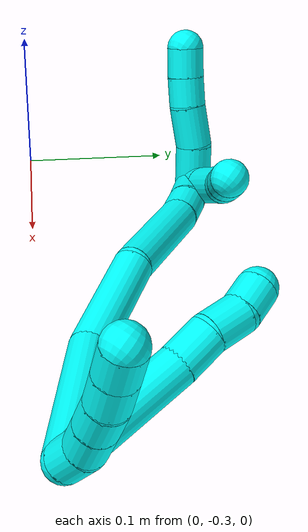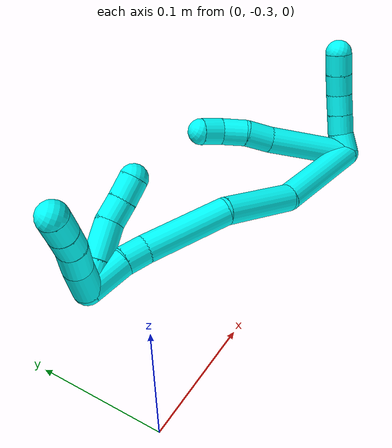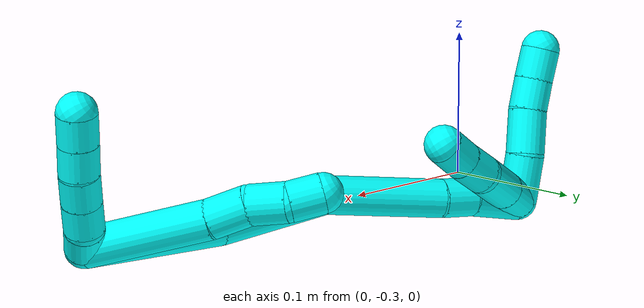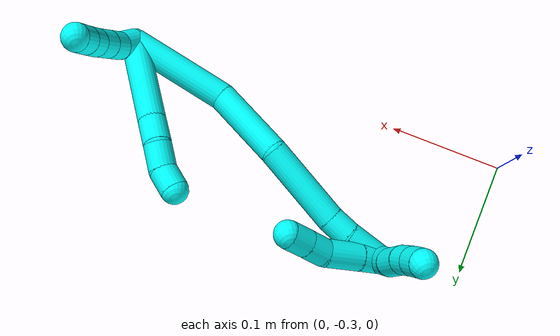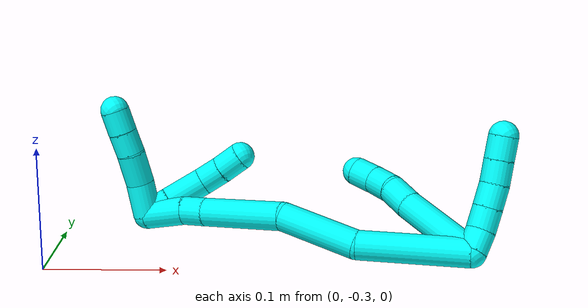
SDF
<sdf version="1.7">
 <world name="default">
  <model name="3">
   <static>0</static>
   <link name="3">
    <collision name="collision-cylinder-e_1_2_8">
     <pose>-0.008776 -0.009324 -0.037979 2.90086 -0.220763 -1.48355</pose>
     <geometry><cylinder><radius>0.0125</radius><length>0.08016</length></cylinder></geometry>
     <surface>
      <friction><ode><mu>1.16</mu><mu2>1.16</mu2><slip1>0</slip1><slip2>0</slip2></ode></friction>
      <contact><ode><kp>1e+06</kp><kd>1</kd><max_vel>0</max_vel><min_depth>0.001</min_depth></ode></contact>
     </surface>
    </collision>
    <visual name="visual-cylinder-e_1_2_8">
     <pose>-0.008776 -0.009324 -0.037979 2.90086 -0.220763 -1.48355</pose>
     <geometry><cylinder><radius>0.0125</radius><length>0.08016</length></cylinder></geometry>
     <material><ambient>0.003922 1 0.996078 1</ambient></material>
    </visual>
    <collision name="collision-cylinder-e_2_8_9">
     <pose>-0.019254 -0.020617 -0.088246 2.98267 -0.135834 -1.41387</pose>
     <geometry><cylinder><radius>0.0125</radius><length>0.025119</length></cylinder></geometry>
     <surface>
      <friction><ode><mu>1.16</mu><mu2>1.16</mu2><slip1>0</slip1><slip2>0</slip2></ode></friction>
      <contact><ode><kp>1e+06</kp><kd>1</kd><max_vel>0</max_vel><min_depth>0.001</min_depth></ode></contact>
     </surface>
    </collision>
    <visual name="visual-cylinder-e_2_8_9">
     <pose>-0.019254 -0.020617 -0.088246 2.98267 -0.135834 -1.41387</pose>
     <geometry><cylinder><radius>0.0125</radius><length>0.025119</length></cylinder></geometry>
     <material><ambient>0.003922 1 0.996078 1</ambient></material>
    </visual>
    <collision name="collision-cylinder-e_3_9_10">
     <pose>-0.02482 -0.026413 -0.111176 2.79637 -0.329368 -1.52289</pose>
     <geometry><cylinder><radius>0.0125</radius><length>0.023905</length></cylinder></geometry>
     <surface>
      <friction><ode><mu>1.16</mu><mu2>1.16</mu2><slip1>0</slip1><slip2>0</slip2></ode></friction>
      <contact><ode><kp>1e+06</kp><kd>1</kd><max_vel>0</max_vel><min_depth>0.001</min_depth></ode></contact>
     </surface>
    </collision>
    <visual name="visual-cylinder-e_3_9_10">
     <pose>-0.02482 -0.026413 -0.111176 2.79637 -0.329368 -1.52289</pose>
     <geometry><cylinder><radius>0.0125</radius><length>0.023905</length></cylinder></geometry>
     <material><ambient>0.003922 1 0.996078 1</ambient></material>
    </visual>
    <collision name="collision-cylinder-e_4_10_6">
     <pose>-0.032657 -0.030224 -0.13144 -3.13983 -0.391367 3.13267</pose>
     <geometry><cylinder><radius>0.0125</radius><length>0.020816</length></cylinder></geometry>
     <surface>
      <friction><ode><mu>1.16</mu><mu2>1.16</mu2><slip1>0</slip1><slip2>0</slip2></ode></friction>
      <contact><ode><kp>1e+06</kp><kd>1</kd><max_vel>0</max_vel><min_depth>0.001</min_depth></ode></contact>
     </surface>
    </collision>
    <visual name="visual-cylinder-e_4_10_6">
     <pose>-0.032657 -0.030224 -0.13144 -3.13983 -0.391367 3.13267</pose>
     <geometry><cylinder><radius>0.0125</radius><length>0.020816</length></cylinder></geometry>
     <material><ambient>0.003922 1 0.996078 1</ambient></material>
    </visual>
    <collision name="collision-cylinder-e_1_2_11">
     <pose>0.00811 -0.002723 -0.005178 2.65746 0.945911 2.24244</pose>
     <geometry><cylinder><radius>0.0125</radius><length>0.02</length></cylinder></geometry>
     <surface>
      <friction><ode><mu>1.16</mu><mu2>1.16</mu2><slip1>0</slip1><slip2>0</slip2></ode></friction>
      <contact><ode><kp>1e+06</kp><kd>1</kd><max_vel>0</max_vel><min_depth>0.001</min_depth></ode></contact>
     </surface>
    </collision>
    <visual name="visual-cylinder-e_1_2_11">
     <pose>0.00811 -0.002723 -0.005178 2.65746 0.945911 2.24244</pose>
     <geometry><cylinder><radius>0.0125</radius><length>0.02</length></cylinder></geometry>
     <material><ambient>0.003922 1 0.996078 1</ambient></material>
    </visual>
    <collision name="collision-cylinder-e_2_11_12">
     <pose>0.02479 -0.004983 -0.015489 -3.05162 1.02925 -2.98271</pose>
     <geometry><cylinder><radius>0.0125</radius><length>0.02</length></cylinder></geometry>
     <surface>
      <friction><ode><mu>1.16</mu><mu2>1.16</mu2><slip1>0</slip1><slip2>0</slip2></ode></friction>
      <contact><ode><kp>1e+06</kp><kd>1</kd><max_vel>0</max_vel><min_depth>0.001</min_depth></ode></contact>
     </surface>
    </collision>
    <visual name="visual-cylinder-e_2_11_12">
     <pose>0.02479 -0.004983 -0.015489 -3.05162 1.02925 -2.98271</pose>
     <geometry><cylinder><radius>0.0125</radius><length>0.02</length></cylinder></geometry>
     <material><ambient>0.003922 1 0.996078 1</ambient></material>
    </visual>
    <collision name="collision-cylinder-e_3_12_13">
     <pose>0.041874 -0.00396 -0.025836 -3.03465 1.01891 -2.95056</pose>
     <geometry><cylinder><radius>0.0125</radius><length>0.02</length></cylinder></geometry>
     <surface>
      <friction><ode><mu>1.16</mu><mu2>1.16</mu2><slip1>0</slip1><slip2>0</slip2></ode></friction>
      <contact><ode><kp>1e+06</kp><kd>1</kd><max_vel>0</max_vel><min_depth>0.001</min_depth></ode></contact>
     </surface>
    </collision>
    <visual name="visual-cylinder-e_3_12_13">
     <pose>0.041874 -0.00396 -0.025836 -3.03465 1.01891 -2.95056</pose>
     <geometry><cylinder><radius>0.0125</radius><length>0.02</length></cylinder></geometry>
     <material><ambient>0.003922 1 0.996078 1</ambient></material>
    </visual>
    <collision name="collision-cylinder-e_4_13_14">
     <pose>0.058463 -0.00169 -0.036696 -2.84749 0.939689 -2.57393</pose>
     <geometry><cylinder><radius>0.0125</radius><length>0.02</length></cylinder></geometry>
     <surface>
      <friction><ode><mu>1.16</mu><mu2>1.16</mu2><slip1>0</slip1><slip2>0</slip2></ode></friction>
      <contact><ode><kp>1e+06</kp><kd>1</kd><max_vel>0</max_vel><min_depth>0.001</min_depth></ode></contact>
     </surface>
    </collision>
    <visual name="visual-cylinder-e_4_13_14">
     <pose>0.058463 -0.00169 -0.036696 -2.84749 0.939689 -2.57393</pose>
     <geometry><cylinder><radius>0.0125</radius><length>0.02</length></cylinder></geometry>
     <material><ambient>0.003922 1 0.996078 1</ambient></material>
    </visual>
    <collision name="collision-cylinder-e_5_14_5">
     <pose>0.074674 0.001815 -0.047873 -2.82788 0.950442 -2.54519</pose>
     <geometry><cylinder><radius>0.0125</radius><length>0.02</length></cylinder></geometry>
     <surface>
      <friction><ode><mu>1.16</mu><mu2>1.16</mu2><slip1>0</slip1><slip2>0</slip2></ode></friction>
      <contact><ode><kp>1e+06</kp><kd>1</kd><max_vel>0</max_vel><min_depth>0.001</min_depth></ode></contact>
     </surface>
    </collision>
    <visual name="visual-cylinder-e_5_14_5">
     <pose>0.074674 0.001815 -0.047873 -2.82788 0.950442 -2.54519</pose>
     <geometry><cylinder><radius>0.0125</radius><length>0.02</length></cylinder></geometry>
     <material><ambient>0.003922 1 0.996078 1</ambient></material>
    </visual>
    <collision name="collision-cylinder-e_1_2_15">
     <pose>-0.032061 0.014745 -0.031071 -2.69849 -0.75033 2.1025</pose>
     <geometry><cylinder><radius>0.0125</radius><length>0.094037</length></cylinder></geometry>
     <surface>
      <friction><ode><mu>1.16</mu><mu2>1.16</mu2><slip1>0</slip1><slip2>0</slip2></ode></friction>
      <contact><ode><kp>1e+06</kp><kd>1</kd><max_vel>0</max_vel><min_depth>0.001</min_depth></ode></contact>
     </surface>
    </collision>
    <visual name="visual-cylinder-e_1_2_15">
     <pose>-0.032061 0.014745 -0.031071 -2.69849 -0.75033 2.1025</pose>
     <geometry><cylinder><radius>0.0125</radius><length>0.094037</length></cylinder></geometry>
     <material><ambient>0.003922 1 0.996078 1</ambient></material>
    </visual>
    <collision name="collision-cylinder-e_2_15_16">
     <pose>-0.080345 0.034957 -0.092782 -2.96507 -0.480484 2.44829</pose>
     <geometry><cylinder><radius>0.0125</radius><length>0.070197</length></cylinder></geometry>
     <surface>
      <friction><ode><mu>1.16</mu><mu2>1.16</mu2><slip1>0</slip1><slip2>0</slip2></ode></friction>
      <contact><ode><kp>1e+06</kp><kd>1</kd><max_vel>0</max_vel><min_depth>0.001</min_depth></ode></contact>
     </surface>
    </collision>
    <visual name="visual-cylinder-e_2_15_16">
     <pose>-0.080345 0.034957 -0.092782 -2.96507 -0.480484 2.44829</pose>
     <geometry><cylinder><radius>0.0125</radius><length>0.070197</length></cylinder></geometry>
     <material><ambient>0.003922 1 0.996078 1</ambient></material>
    </visual>
    <collision name="collision-cylinder-e_3_16_17">
     <pose>-0.123386 0.04049 -0.151727 -3.13921 -0.75846 3.13562</pose>
     <geometry><cylinder><radius>0.0125</radius><length>0.077984</length></cylinder></geometry>
     <surface>
      <friction><ode><mu>1.16</mu><mu2>1.16</mu2><slip1>0</slip1><slip2>0</slip2></ode></friction>
      <contact><ode><kp>1e+06</kp><kd>1</kd><max_vel>0</max_vel><min_depth>0.001</min_depth></ode></contact>
     </surface>
    </collision>
    <visual name="visual-cylinder-e_3_16_17">
     <pose>-0.123386 0.04049 -0.151727 -3.13921 -0.75846 3.13562</pose>
     <geometry><cylinder><radius>0.0125</radius><length>0.077984</length></cylinder></geometry>
     <material><ambient>0.003922 1 0.996078 1</ambient></material>
    </visual>
    <collision name="collision-cylinder-e_4_17_18">
     <pose>-0.157614 0.042038 -0.187712 -2.95116 -0.758273 2.67104</pose>
     <geometry><cylinder><radius>0.0125</radius><length>0.021548</length></cylinder></geometry>
     <surface>
      <friction><ode><mu>1.16</mu><mu2>1.16</mu2><slip1>0</slip1><slip2>0</slip2></ode></friction>
      <contact><ode><kp>1e+06</kp><kd>1</kd><max_vel>0</max_vel><min_depth>0.001</min_depth></ode></contact>
     </surface>
    </collision>
    <visual name="visual-cylinder-e_4_17_18">
     <pose>-0.157614 0.042038 -0.187712 -2.95116 -0.758273 2.67104</pose>
     <geometry><cylinder><radius>0.0125</radius><length>0.021548</length></cylinder></geometry>
     <material><ambient>0.003922 1 0.996078 1</ambient></material>
    </visual>
    <collision name="collision-cylinder-e_5_18_1">
     <pose>-0.179502 0.046481 -0.205872 -2.86602 -0.925931 2.59965</pose>
     <geometry><cylinder><radius>0.0125</radius><length>0.036234</length></cylinder></geometry>
     <surface>
      <friction><ode><mu>1.16</mu><mu2>1.16</mu2><slip1>0</slip1><slip2>0</slip2></ode></friction>
      <contact><ode><kp>1e+06</kp><kd>1</kd><max_vel>0</max_vel><min_depth>0.001</min_depth></ode></contact>
     </surface>
    </collision>
    <visual name="visual-cylinder-e_5_18_1">
     <pose>-0.179502 0.046481 -0.205872 -2.86602 -0.925931 2.59965</pose>
     <geometry><cylinder><radius>0.0125</radius><length>0.036234</length></cylinder></geometry>
     <material><ambient>0.003922 1 0.996078 1</ambient></material>
    </visual>
    <collision name="collision-cylinder-e_1_1_19">
     <pose>-0.18319 0.045227 -0.215749 1.42899 1.19476 1.06618</pose>
     <geometry><cylinder><radius>0.0125</radius><length>0.023202</length></cylinder></geometry>
     <surface>
      <friction><ode><mu>1.16</mu><mu2>1.16</mu2><slip1>0</slip1><slip2>0</slip2></ode></friction>
      <contact><ode><kp>1e+06</kp><kd>1</kd><max_vel>0</max_vel><min_depth>0.001</min_depth></ode></contact>
     </surface>
    </collision>
    <visual name="visual-cylinder-e_1_1_19">
     <pose>-0.18319 0.045227 -0.215749 1.42899 1.19476 1.06618</pose>
     <geometry><cylinder><radius>0.0125</radius><length>0.023202</length></cylinder></geometry>
     <material><ambient>0.003922 1 0.996078 1</ambient></material>
    </visual>
    <collision name="collision-cylinder-e_2_19_20">
     <pose>-0.156389 0.034363 -0.214035 1.40508 1.17243 1.02438</pose>
     <geometry><cylinder><radius>0.0125</radius><length>0.034742</length></cylinder></geometry>
     <surface>
      <friction><ode><mu>1.16</mu><mu2>1.16</mu2><slip1>0</slip1><slip2>0</slip2></ode></friction>
      <contact><ode><kp>1e+06</kp><kd>1</kd><max_vel>0</max_vel><min_depth>0.001</min_depth></ode></contact>
     </surface>
    </collision>
    <visual name="visual-cylinder-e_2_19_20">
     <pose>-0.156389 0.034363 -0.214035 1.40508 1.17243 1.02438</pose>
     <geometry><cylinder><radius>0.0125</radius><length>0.034742</length></cylinder></geometry>
     <material><ambient>0.003922 1 0.996078 1</ambient></material>
    </visual>
    <collision name="collision-cylinder-e_3_20_21">
     <pose>-0.130185 0.026595 -0.210922 0.510716 1.34936 0.411723</pose>
     <geometry><cylinder><radius>0.0125</radius><length>0.020897</length></cylinder></geometry>
     <surface>
      <friction><ode><mu>1.16</mu><mu2>1.16</mu2><slip1>0</slip1><slip2>0</slip2></ode></friction>
      <contact><ode><kp>1e+06</kp><kd>1</kd><max_vel>0</max_vel><min_depth>0.001</min_depth></ode></contact>
     </surface>
    </collision>
    <visual name="visual-cylinder-e_3_20_21">
     <pose>-0.130185 0.026595 -0.210922 0.510716 1.34936 0.411723</pose>
     <geometry><cylinder><radius>0.0125</radius><length>0.020897</length></cylinder></geometry>
     <material><ambient>0.003922 1 0.996078 1</ambient></material>
    </visual>
    <collision name="collision-cylinder-e_4_21_4">
     <pose>-0.109559 0.024503 -0.207456 0.585731 1.40398 0.499373</pose>
     <geometry><cylinder><radius>0.0125</radius><length>0.021159</length></cylinder></geometry>
     <surface>
      <friction><ode><mu>1.16</mu><mu2>1.16</mu2><slip1>0</slip1><slip2>0</slip2></ode></friction>
      <contact><ode><kp>1e+06</kp><kd>1</kd><max_vel>0</max_vel><min_depth>0.001</min_depth></ode></contact>
     </surface>
    </collision>
    <visual name="visual-cylinder-e_4_21_4">
     <pose>-0.109559 0.024503 -0.207456 0.585731 1.40398 0.499373</pose>
     <geometry><cylinder><radius>0.0125</radius><length>0.021159</length></cylinder></geometry>
     <material><ambient>0.003922 1 0.996078 1</ambient></material>
    </visual>
    <collision name="collision-cylinder-e_1_1_22">
     <pose>-0.185232 0.056877 -0.226499 -2.50943 0.607703 -1.5287</pose>
     <geometry><cylinder><radius>0.0125</radius><length>0.030644</length></cylinder></geometry>
     <surface>
      <friction><ode><mu>1.16</mu><mu2>1.16</mu2><slip1>0</slip1><slip2>0</slip2></ode></friction>
      <contact><ode><kp>1e+06</kp><kd>1</kd><max_vel>0</max_vel><min_depth>0.001</min_depth></ode></contact>
     </surface>
    </collision>
    <visual name="visual-cylinder-e_1_1_22">
     <pose>-0.185232 0.056877 -0.226499 -2.50943 0.607703 -1.5287</pose>
     <geometry><cylinder><radius>0.0125</radius><length>0.030644</length></cylinder></geometry>
     <material><ambient>0.003922 1 0.996078 1</ambient></material>
    </visual>
    <collision name="collision-cylinder-e_2_22_23">
     <pose>-0.168752 0.073424 -0.244813 -2.30139 0.563489 -1.14989</pose>
     <geometry><cylinder><radius>0.0125</radius><length>0.028948</length></cylinder></geometry>
     <surface>
      <friction><ode><mu>1.16</mu><mu2>1.16</mu2><slip1>0</slip1><slip2>0</slip2></ode></friction>
      <contact><ode><kp>1e+06</kp><kd>1</kd><max_vel>0</max_vel><min_depth>0.001</min_depth></ode></contact>
     </surface>
    </collision>
    <visual name="visual-cylinder-e_2_22_23">
     <pose>-0.168752 0.073424 -0.244813 -2.30139 0.563489 -1.14989</pose>
     <geometry><cylinder><radius>0.0125</radius><length>0.028948</length></cylinder></geometry>
     <material><ambient>0.003922 1 0.996078 1</ambient></material>
    </visual>
    <collision name="collision-cylinder-e_3_23_24">
     <pose>-0.15633 0.088369 -0.259664 -2.4243 0.486423 -1.16941</pose>
     <geometry><cylinder><radius>0.0125</radius><length>0.020072</length></cylinder></geometry>
     <surface>
      <friction><ode><mu>1.16</mu><mu2>1.16</mu2><slip1>0</slip1><slip2>0</slip2></ode></friction>
      <contact><ode><kp>1e+06</kp><kd>1</kd><max_vel>0</max_vel><min_depth>0.001</min_depth></ode></contact>
     </surface>
    </collision>
    <visual name="visual-cylinder-e_3_23_24">
     <pose>-0.15633 0.088369 -0.259664 -2.4243 0.486423 -1.16941</pose>
     <geometry><cylinder><radius>0.0125</radius><length>0.020072</length></cylinder></geometry>
     <material><ambient>0.003922 1 0.996078 1</ambient></material>
    </visual>
    <collision name="collision-cylinder-e_4_24_3">
     <pose>-0.146779 0.099665 -0.273415 -2.48331 0.498248 -1.28037</pose>
     <geometry><cylinder><radius>0.0125</radius><length>0.020336</length></cylinder></geometry>
     <surface>
      <friction><ode><mu>1.16</mu><mu2>1.16</mu2><slip1>0</slip1><slip2>0</slip2></ode></friction>
      <contact><ode><kp>1e+06</kp><kd>1</kd><max_vel>0</max_vel><min_depth>0.001</min_depth></ode></contact>
     </surface>
    </collision>
    <visual name="visual-cylinder-e_4_24_3">
     <pose>-0.146779 0.099665 -0.273415 -2.48331 0.498248 -1.28037</pose>
     <geometry><cylinder><radius>0.0125</radius><length>0.020336</length></cylinder></geometry>
     <material><ambient>0.003922 1 0.996078 1</ambient></material>
    </visual>
    <collision name="collision-sphere-3">
     <pose>-0.14192 0.105129 -0.28048 0 -0 0</pose>
     <geometry><sphere><radius>0.0125</radius></sphere></geometry>
     <surface>
      <friction><ode><mu>1.16</mu><mu2>1.16</mu2><slip1>0</slip1><slip2>0</slip2></ode></friction>
      <contact><ode><kp>1e+06</kp><kd>1</kd><max_vel>0</max_vel><min_depth>0.001</min_depth></ode></contact>
     </surface>
    </collision>
    <visual name="visual-sphere-3">
     <pose>-0.14192 0.105129 -0.28048 0 -0 0</pose>
     <geometry><sphere><radius>0.0125</radius></sphere></geometry>
     <material><ambient>0.003922 1 0.996078 1</ambient></material>
    </visual>
    <collision name="collision-sphere-24">
     <pose>-0.151638 0.094201 -0.26635 0 -0 0</pose>
     <geometry><sphere><radius>0.0125</radius></sphere></geometry>
     <surface>
      <friction><ode><mu>1.16</mu><mu2>1.16</mu2><slip1>0</slip1><slip2>0</slip2></ode></friction>
      <contact><ode><kp>1e+06</kp><kd>1</kd><max_vel>0</max_vel><min_depth>0.001</min_depth></ode></contact>
     </surface>
    </collision>
    <visual name="visual-sphere-24">
     <pose>-0.151638 0.094201 -0.26635 0 -0 0</pose>
     <geometry><sphere><radius>0.0125</radius></sphere></geometry>
     <material><ambient>0.003922 1 0.996078 1</ambient></material>
    </visual>
    <collision name="collision-sphere-23">
     <pose>-0.161021 0.082537 -0.252978 0 -0 0</pose>
     <geometry><sphere><radius>0.0125</radius></sphere></geometry>
     <surface>
      <friction><ode><mu>1.16</mu><mu2>1.16</mu2><slip1>0</slip1><slip2>0</slip2></ode></friction>
      <contact><ode><kp>1e+06</kp><kd>1</kd><max_vel>0</max_vel><min_depth>0.001</min_depth></ode></contact>
     </surface>
    </collision>
    <visual name="visual-sphere-23">
     <pose>-0.161021 0.082537 -0.252978 0 -0 0</pose>
     <geometry><sphere><radius>0.0125</radius></sphere></geometry>
     <material><ambient>0.003922 1 0.996078 1</ambient></material>
    </visual>
    <collision name="collision-sphere-22">
     <pose>-0.176483 0.06431 -0.236647 0 -0 0</pose>
     <geometry><sphere><radius>0.0125</radius></sphere></geometry>
     <surface>
      <friction><ode><mu>1.16</mu><mu2>1.16</mu2><slip1>0</slip1><slip2>0</slip2></ode></friction>
      <contact><ode><kp>1e+06</kp><kd>1</kd><max_vel>0</max_vel><min_depth>0.001</min_depth></ode></contact>
     </surface>
    </collision>
    <visual name="visual-sphere-22">
     <pose>-0.176483 0.06431 -0.236647 0 -0 0</pose>
     <geometry><sphere><radius>0.0125</radius></sphere></geometry>
     <material><ambient>0.003922 1 0.996078 1</ambient></material>
    </visual>
    <collision name="collision-sphere-4">
     <pose>-0.099126 0.023531 -0.205992 0 -0 0</pose>
     <geometry><sphere><radius>0.0125</radius></sphere></geometry>
     <surface>
      <friction><ode><mu>1.16</mu><mu2>1.16</mu2><slip1>0</slip1><slip2>0</slip2></ode></friction>
      <contact><ode><kp>1e+06</kp><kd>1</kd><max_vel>0</max_vel><min_depth>0.001</min_depth></ode></contact>
     </surface>
    </collision>
    <visual name="visual-sphere-4">
     <pose>-0.099126 0.023531 -0.205992 0 -0 0</pose>
     <geometry><sphere><radius>0.0125</radius></sphere></geometry>
     <material><ambient>0.003922 1 0.996078 1</ambient></material>
    </visual>
    <collision name="collision-sphere-21">
     <pose>-0.119991 0.025474 -0.20892 0 -0 0</pose>
     <geometry><sphere><radius>0.0125</radius></sphere></geometry>
     <surface>
      <friction><ode><mu>1.16</mu><mu2>1.16</mu2><slip1>0</slip1><slip2>0</slip2></ode></friction>
      <contact><ode><kp>1e+06</kp><kd>1</kd><max_vel>0</max_vel><min_depth>0.001</min_depth></ode></contact>
     </surface>
    </collision>
    <visual name="visual-sphere-21">
     <pose>-0.119991 0.025474 -0.20892 0 -0 0</pose>
     <geometry><sphere><radius>0.0125</radius></sphere></geometry>
     <material><ambient>0.003922 1 0.996078 1</ambient></material>
    </visual>
    <collision name="collision-sphere-20">
     <pose>-0.140378 0.027717 -0.212924 0 -0 0</pose>
     <geometry><sphere><radius>0.0125</radius></sphere></geometry>
     <surface>
      <friction><ode><mu>1.16</mu><mu2>1.16</mu2><slip1>0</slip1><slip2>0</slip2></ode></friction>
      <contact><ode><kp>1e+06</kp><kd>1</kd><max_vel>0</max_vel><min_depth>0.001</min_depth></ode></contact>
     </surface>
    </collision>
    <visual name="visual-sphere-20">
     <pose>-0.140378 0.027717 -0.212924 0 -0 0</pose>
     <geometry><sphere><radius>0.0125</radius></sphere></geometry>
     <material><ambient>0.003922 1 0.996078 1</ambient></material>
    </visual>
    <collision name="collision-sphere-11">
     <pose>0.016221 -0.005446 -0.010356 0 -0 0</pose>
     <geometry><sphere><radius>0.0125</radius></sphere></geometry>
     <surface>
      <friction><ode><mu>1.16</mu><mu2>1.16</mu2><slip1>0</slip1><slip2>0</slip2></ode></friction>
      <contact><ode><kp>1e+06</kp><kd>1</kd><max_vel>0</max_vel><min_depth>0.001</min_depth></ode></contact>
     </surface>
    </collision>
    <visual name="visual-sphere-11">
     <pose>0.016221 -0.005446 -0.010356 0 -0 0</pose>
     <geometry><sphere><radius>0.0125</radius></sphere></geometry>
     <material><ambient>0.003922 1 0.996078 1</ambient></material>
    </visual>
    <collision name="collision-sphere-6">
     <pose>-0.036627 -0.030207 -0.141061 0 -0 0</pose>
     <geometry><sphere><radius>0.0125</radius></sphere></geometry>
     <surface>
      <friction><ode><mu>1.16</mu><mu2>1.16</mu2><slip1>0</slip1><slip2>0</slip2></ode></friction>
      <contact><ode><kp>1e+06</kp><kd>1</kd><max_vel>0</max_vel><min_depth>0.001</min_depth></ode></contact>
     </surface>
    </collision>
    <visual name="visual-sphere-6">
     <pose>-0.036627 -0.030207 -0.141061 0 -0 0</pose>
     <geometry><sphere><radius>0.0125</radius></sphere></geometry>
     <material><ambient>0.003922 1 0.996078 1</ambient></material>
    </visual>
    <collision name="collision-sphere-10">
     <pose>-0.028687 -0.030241 -0.121819 0 -0 0</pose>
     <geometry><sphere><radius>0.0125</radius></sphere></geometry>
     <surface>
      <friction><ode><mu>1.16</mu><mu2>1.16</mu2><slip1>0</slip1><slip2>0</slip2></ode></friction>
      <contact><ode><kp>1e+06</kp><kd>1</kd><max_vel>0</max_vel><min_depth>0.001</min_depth></ode></contact>
     </surface>
    </collision>
    <visual name="visual-sphere-10">
     <pose>-0.028687 -0.030241 -0.121819 0 -0 0</pose>
     <geometry><sphere><radius>0.0125</radius></sphere></geometry>
     <material><ambient>0.003922 1 0.996078 1</ambient></material>
    </visual>
    <collision name="collision-sphere-9">
     <pose>-0.020954 -0.022586 -0.100533 0 -0 0</pose>
     <geometry><sphere><radius>0.0125</radius></sphere></geometry>
     <surface>
      <friction><ode><mu>1.16</mu><mu2>1.16</mu2><slip1>0</slip1><slip2>0</slip2></ode></friction>
      <contact><ode><kp>1e+06</kp><kd>1</kd><max_vel>0</max_vel><min_depth>0.001</min_depth></ode></contact>
     </surface>
    </collision>
    <visual name="visual-sphere-9">
     <pose>-0.020954 -0.022586 -0.100533 0 -0 0</pose>
     <geometry><sphere><radius>0.0125</radius></sphere></geometry>
     <material><ambient>0.003922 1 0.996078 1</ambient></material>
    </visual>
    <collision name="collision-sphere-2">
     <geometry><sphere><radius>0.0125</radius></sphere></geometry>
     <surface>
      <friction><ode><mu>1.16</mu><mu2>1.16</mu2><slip1>0</slip1><slip2>0</slip2></ode></friction>
      <contact><ode><kp>1e+06</kp><kd>1</kd><max_vel>0</max_vel><min_depth>0.001</min_depth></ode></contact>
     </surface>
    </collision>
    <visual name="visual-sphere-2">
     <geometry><sphere><radius>0.0125</radius></sphere></geometry>
     <material><ambient>0.003922 1 0.996078 1</ambient></material>
    </visual>
    <collision name="collision-sphere-19">
     <pose>-0.1724 0.041009 -0.215147 0 -0 0</pose>
     <geometry><sphere><radius>0.0125</radius></sphere></geometry>
     <surface>
      <friction><ode><mu>1.16</mu><mu2>1.16</mu2><slip1>0</slip1><slip2>0</slip2></ode></friction>
      <contact><ode><kp>1e+06</kp><kd>1</kd><max_vel>0</max_vel><min_depth>0.001</min_depth></ode></contact>
     </surface>
    </collision>
    <visual name="visual-sphere-19">
     <pose>-0.1724 0.041009 -0.215147 0 -0 0</pose>
     <geometry><sphere><radius>0.0125</radius></sphere></geometry>
     <material><ambient>0.003922 1 0.996078 1</ambient></material>
    </visual>
    <collision name="collision-sphere-8">
     <pose>-0.017553 -0.018647 -0.075959 0 -0 0</pose>
     <geometry><sphere><radius>0.0125</radius></sphere></geometry>
     <surface>
      <friction><ode><mu>1.16</mu><mu2>1.16</mu2><slip1>0</slip1><slip2>0</slip2></ode></friction>
      <contact><ode><kp>1e+06</kp><kd>1</kd><max_vel>0</max_vel><min_depth>0.001</min_depth></ode></contact>
     </surface>
    </collision>
    <visual name="visual-sphere-8">
     <pose>-0.017553 -0.018647 -0.075959 0 -0 0</pose>
     <geometry><sphere><radius>0.0125</radius></sphere></geometry>
     <material><ambient>0.003922 1 0.996078 1</ambient></material>
    </visual>
    <collision name="collision-sphere-12">
     <pose>0.033359 -0.004519 -0.020623 0 -0 0</pose>
     <geometry><sphere><radius>0.0125</radius></sphere></geometry>
     <surface>
      <friction><ode><mu>1.16</mu><mu2>1.16</mu2><slip1>0</slip1><slip2>0</slip2></ode></friction>
      <contact><ode><kp>1e+06</kp><kd>1</kd><max_vel>0</max_vel><min_depth>0.001</min_depth></ode></contact>
     </surface>
    </collision>
    <visual name="visual-sphere-12">
     <pose>0.033359 -0.004519 -0.020623 0 -0 0</pose>
     <geometry><sphere><radius>0.0125</radius></sphere></geometry>
     <material><ambient>0.003922 1 0.996078 1</ambient></material>
    </visual>
    <collision name="collision-sphere-13">
     <pose>0.05039 -0.0034 -0.031049 0 -0 0</pose>
     <geometry><sphere><radius>0.0125</radius></sphere></geometry>
     <surface>
      <friction><ode><mu>1.16</mu><mu2>1.16</mu2><slip1>0</slip1><slip2>0</slip2></ode></friction>
      <contact><ode><kp>1e+06</kp><kd>1</kd><max_vel>0</max_vel><min_depth>0.001</min_depth></ode></contact>
     </surface>
    </collision>
    <visual name="visual-sphere-13">
     <pose>0.05039 -0.0034 -0.031049 0 -0 0</pose>
     <geometry><sphere><radius>0.0125</radius></sphere></geometry>
     <material><ambient>0.003922 1 0.996078 1</ambient></material>
    </visual>
    <collision name="collision-sphere-14">
     <pose>0.066537 2.1e-05 -0.042343 0 -0 0</pose>
     <geometry><sphere><radius>0.0125</radius></sphere></geometry>
     <surface>
      <friction><ode><mu>1.16</mu><mu2>1.16</mu2><slip1>0</slip1><slip2>0</slip2></ode></friction>
      <contact><ode><kp>1e+06</kp><kd>1</kd><max_vel>0</max_vel><min_depth>0.001</min_depth></ode></contact>
     </surface>
    </collision>
    <visual name="visual-sphere-14">
     <pose>0.066537 2.1e-05 -0.042343 0 -0 0</pose>
     <geometry><sphere><radius>0.0125</radius></sphere></geometry>
     <material><ambient>0.003922 1 0.996078 1</ambient></material>
    </visual>
    <collision name="collision-sphere-5">
     <pose>0.082811 0.003609 -0.053402 0 -0 0</pose>
     <geometry><sphere><radius>0.0125</radius></sphere></geometry>
     <surface>
      <friction><ode><mu>1.16</mu><mu2>1.16</mu2><slip1>0</slip1><slip2>0</slip2></ode></friction>
      <contact><ode><kp>1e+06</kp><kd>1</kd><max_vel>0</max_vel><min_depth>0.001</min_depth></ode></contact>
     </surface>
    </collision>
    <visual name="visual-sphere-5">
     <pose>0.082811 0.003609 -0.053402 0 -0 0</pose>
     <geometry><sphere><radius>0.0125</radius></sphere></geometry>
     <material><ambient>0.003922 1 0.996078 1</ambient></material>
    </visual>
    <collision name="collision-sphere-15">
     <pose>-0.064122 0.029491 -0.062142 0 -0 0</pose>
     <geometry><sphere><radius>0.0125</radius></sphere></geometry>
     <surface>
      <friction><ode><mu>1.16</mu><mu2>1.16</mu2><slip1>0</slip1><slip2>0</slip2></ode></friction>
      <contact><ode><kp>1e+06</kp><kd>1</kd><max_vel>0</max_vel><min_depth>0.001</min_depth></ode></contact>
     </surface>
    </collision>
    <visual name="visual-sphere-15">
     <pose>-0.064122 0.029491 -0.062142 0 -0 0</pose>
     <geometry><sphere><radius>0.0125</radius></sphere></geometry>
     <material><ambient>0.003922 1 0.996078 1</ambient></material>
    </visual>
    <collision name="collision-sphere-16">
     <pose>-0.096567 0.040422 -0.123423 0 -0 0</pose>
     <geometry><sphere><radius>0.0125</radius></sphere></geometry>
     <surface>
      <friction><ode><mu>1.16</mu><mu2>1.16</mu2><slip1>0</slip1><slip2>0</slip2></ode></friction>
      <contact><ode><kp>1e+06</kp><kd>1</kd><max_vel>0</max_vel><min_depth>0.001</min_depth></ode></contact>
     </surface>
    </collision>
    <visual name="visual-sphere-16">
     <pose>-0.096567 0.040422 -0.123423 0 -0 0</pose>
     <geometry><sphere><radius>0.0125</radius></sphere></geometry>
     <material><ambient>0.003922 1 0.996078 1</ambient></material>
    </visual>
    <collision name="collision-sphere-17">
     <pose>-0.150205 0.040557 -0.180031 0 -0 0</pose>
     <geometry><sphere><radius>0.0125</radius></sphere></geometry>
     <surface>
      <friction><ode><mu>1.16</mu><mu2>1.16</mu2><slip1>0</slip1><slip2>0</slip2></ode></friction>
      <contact><ode><kp>1e+06</kp><kd>1</kd><max_vel>0</max_vel><min_depth>0.001</min_depth></ode></contact>
     </surface>
    </collision>
    <visual name="visual-sphere-17">
     <pose>-0.150205 0.040557 -0.180031 0 -0 0</pose>
     <geometry><sphere><radius>0.0125</radius></sphere></geometry>
     <material><ambient>0.003922 1 0.996078 1</ambient></material>
    </visual>
    <collision name="collision-sphere-18">
     <pose>-0.165023 0.043518 -0.195393 0 -0 0</pose>
     <geometry><sphere><radius>0.0125</radius></sphere></geometry>
     <surface>
      <friction><ode><mu>1.16</mu><mu2>1.16</mu2><slip1>0</slip1><slip2>0</slip2></ode></friction>
      <contact><ode><kp>1e+06</kp><kd>1</kd><max_vel>0</max_vel><min_depth>0.001</min_depth></ode></contact>
     </surface>
    </collision>
    <visual name="visual-sphere-18">
     <pose>-0.165023 0.043518 -0.195393 0 -0 0</pose>
     <geometry><sphere><radius>0.0125</radius></sphere></geometry>
     <material><ambient>0.003922 1 0.996078 1</ambient></material>
    </visual>
    <collision name="collision-sphere-1">
     <pose>-0.193981 0.049445 -0.216351 0 -0 0</pose>
     <geometry><sphere><radius>0.0125</radius></sphere></geometry>
     <surface>
      <friction><ode><mu>1.16</mu><mu2>1.16</mu2><slip1>0</slip1><slip2>0</slip2></ode></friction>
      <contact><ode><kp>1e+06</kp><kd>1</kd><max_vel>0</max_vel><min_depth>0.001</min_depth></ode></contact>
     </surface>
    </collision>
    <visual name="visual-sphere-1">
     <pose>-0.193981 0.049445 -0.216351 0 -0 0</pose>
     <geometry><sphere><radius>0.0125</radius></sphere></geometry>
     <material><ambient>0.003922 1 0.996078 1</ambient></material>
    </visual>
    <inertial>
     <pose>-0.077181 0.023757 -0.122782 0 -0 0</pose>
     <mass>0.75</mass>
     <inertia>
      <ixx>-6.8e-05</ixx>
      <ixy>0</ixy>
      <ixz>0</ixz>
      <iyy>0.000159</iyy>
      <iyz>0</iyz>
      <izz>3.4e-05</izz>
     </inertia>
    </inertial>
   </link>
   <pose>0.346325 -0.28693 0.011938 2.48515 -0.806143 -0.035331</pose>
  </model>
 </world>
</sdf>
